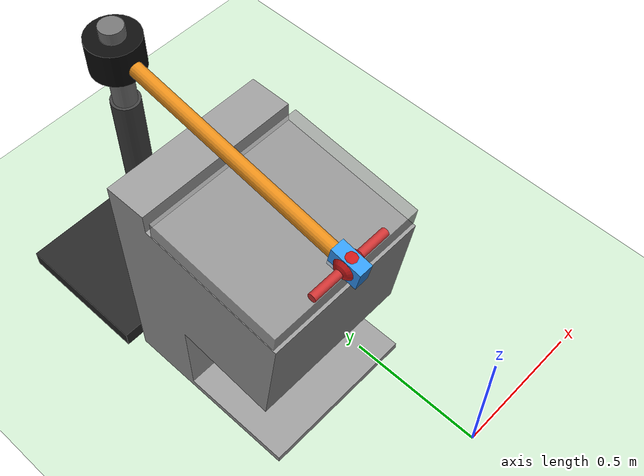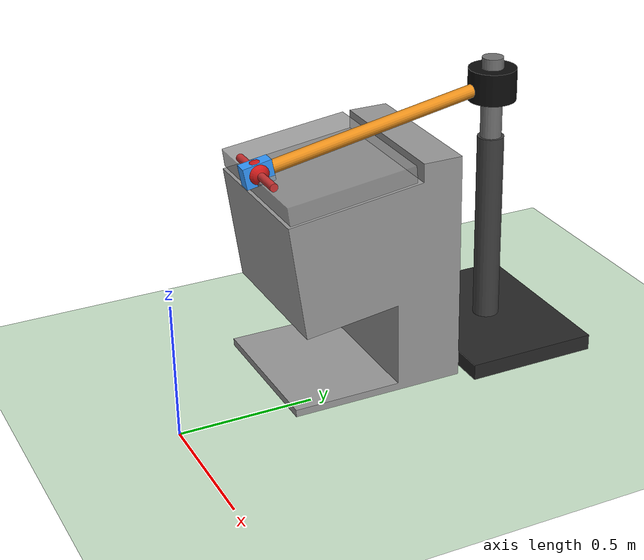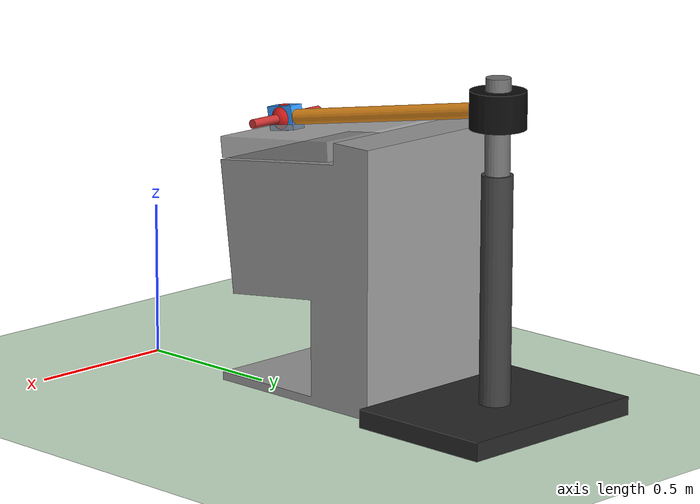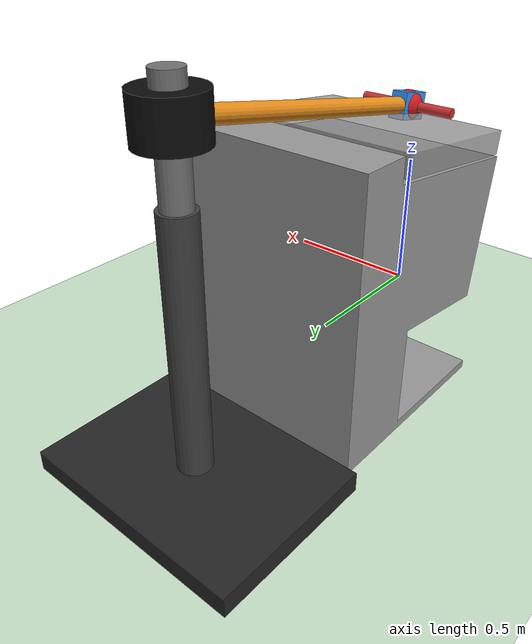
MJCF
<mujoco model="Test_efficold_mechanical_rotary_system">

  <compiler angle="radian"/>

  <option timestep="0.002" gravity="0 0 -9.81"/>

  <asset>
    <mesh name="frigo_mesh" file="efficold_corpo.obj"/>
    <mesh name="porta_mesh" file="efficold_porta.obj"/>
  </asset>

  <worldbody>
    <geom name="pavimento" type="plane" size="5 5 0.1" rgba="0.8 0.9 0.8 1"/>
    <light directional="true" diffuse="0.8 0.8 0.8" specular="0.2 0.2 0.2" pos="0 0 5" dir="0 0 -1" castshadow="false"/>

    <body name="sistema_meccanico_dedicato" pos="-0.2 1.343876 0">

      <geom name="base_meccanica" type="box" pos="0 0 0.03" size="0.35 0.25 0.03" rgba="0.15 0.15 0.15 1" contype="0" conaffinity="0"/>
      <geom name="colonna_fissa" type="cylinder" pos="0 0 0.375" size="0.05 0.42" rgba="0.25 0.25 0.25 1" contype="0" conaffinity="0"/>

      <body name="colonna_regolabile" pos="0 0 1.0">
        <inertial pos="0 0 -0.20" mass="4.0" diaginertia="0.08 0.08 0.02"/>
        <geom name="colonna_mobile" type="cylinder" pos="0 0 -0.20" size="0.04 0.30" rgba="0.45 0.45 0.45 1" contype="0" conaffinity="0"/>

        <body name="motoriduttore" pos="0 0 0">
          <inertial pos="0 0 0" mass="3.0" diaginertia="0.04 0.04 0.03"/>
          <geom name="motoriduttore_visual" type="cylinder" pos="0 0 0" size="0.09 0.06" rgba="0.05 0.05 0.05 1" contype="0" conaffinity="0"/>
          <site name="asse_motoriduttore" pos="0 0 0" size="0.035" rgba="0 0 1 1"/>

          <body name="braccio_rotante" pos="0 0 0" xyaxes="0 -0.983832 -0.179094 0 0.179094 -0.983832">
            <joint name="giunto_rotante" type="hinge" axis="0 0 1" range="-1.5708 1.5708" limited="true" damping="5" frictionloss="1"/>

            <inertial pos="0.465 0 0" mass="2.5" diaginertia="0.08 0.08 0.006"/>
            <geom name="braccio_guida_visual" type="capsule" fromto="0 0 0 0.94 0 0" size="0.025" rgba="0.9 0.55 0.1 1" contype="0" conaffinity="0"/>
            <site name="asse_braccio" pos="0.94 0 0" size="0.025" rgba="1 0.5 0 1"/>

            <body name="carrello_telescopico" pos="0.949223 0 0">
              <joint name="compensazione_radiale" type="slide" axis="1 0 0" range="-0.45 0.10" limited="true" damping="15" frictionloss="0.5"/>

              <inertial pos="0 0 0" mass="0.8" diaginertia="0.004 0.004 0.002"/>
              <geom name="carrello_visual" type="box" pos="0 0 0" size="0.055 0.04 0.025" rgba="0.2 0.6 1 1" contype="0" conaffinity="0"/>
              <geom name="stelo_telescopico_visual" type="capsule" fromto="-0.40 0 0 0 0 0" size="0.018" rgba="0.75 0.75 0.75 1" contype="0" conaffinity="0"/>

              <body name="giunto_allineamento" pos="0 0 0">
                <joint name="snodo_allineamento" type="ball" damping="0.1"/>

                <inertial pos="0 0 0" mass="0.4" diaginertia="0.002 0.002 0.002"/>
                <geom name="snodo_allineamento_visual" type="sphere" pos="0 0 0" size="0.035" rgba="0.1 0.6 1 1" contype="0" conaffinity="0"/>

                <body name="end_effector" pos="0 0 0">
                  <inertial pos="0 0 0" mass="0.3" diaginertia="0.001 0.001 0.001"/>
                  <geom name="end_effector_visual" type="sphere" pos="0 0 0" size="0.045" rgba="0.8 0.1 0.1 1" contype="0" conaffinity="0"/>
                  <site name="punto_presa_meccanico" pos="0 0 0" size="0.03" rgba="1 0 0 1"/>
                </body>
              </body>
            </body>
          </body>
        </body>
      </body>
    </body>

    <!-- Banco frigo Efficold: dati invariati -->
    <body name="banco_frigo" pos="-0.5 0.4 0">
      <geom type="mesh" mesh="frigo_mesh" rgba="0.6 0.6 0.6 1" contype="0" conaffinity="0"/>

      <body name="porta" pos="0 0 0">
        <joint name="giunto_porta" type="hinge" pos="-0.2 0.475 0.8" axis="1 0 0" range="-2.0944 0" limited="true" damping="2.0" frictionloss="1.86" stiffness="0" springref="0"/>
        <inertial pos="0.15 0.475 0.525" mass="9" diaginertia="0.23 0.23 0.23"/>
        <geom type="mesh" mesh="porta_mesh" rgba="0.6 0.6 0.6 0.8" contype="0" conaffinity="0"/>

        <body name="maniglia_body" pos="0.3 0.01 0.83" euler="0 1.57 0">
          <geom name="maniglia" type="cylinder" size="0.015 0.15" rgba="0.8 0.2 0.2 1" contype="0" conaffinity="0"/>
          <site name="target_maniglia" pos="0 0 0" size="0.025" rgba="1 0 0 0.5"/>
        </body>
      </body>
    </body>
  </worldbody>

  <equality>
    <connect name="presa_meccanica_maniglia"
             site1="punto_presa_meccanico"
             site2="target_maniglia"
             solimp="0.85 0.95 0.002"
             solref="0.03 1"/>
  </equality>

  <actuator>
    <motor name="motore_motoriduttore"
           joint="giunto_rotante"
           gear="1"
           ctrllimited="true"
           ctrlrange="-150 150"/>
  </actuator>

  <sensor>
    <jointpos name="angolo_porta" joint="giunto_porta"/>
    <jointvel name="velocita_porta" joint="giunto_porta"/>

    <jointpos name="angolo_braccio" joint="giunto_rotante"/>
    <jointvel name="velocita_braccio" joint="giunto_rotante"/>

    <jointpos name="compensazione_radiale_pos" joint="compensazione_radiale"/>
    <jointvel name="compensazione_radiale_vel" joint="compensazione_radiale"/>

    <framepos name="posizione_punto_presa_meccanico" objtype="site" objname="punto_presa_meccanico"/>
    <framepos name="posizione_maniglia" objtype="site" objname="target_maniglia"/>
  </sensor>

</mujoco>
